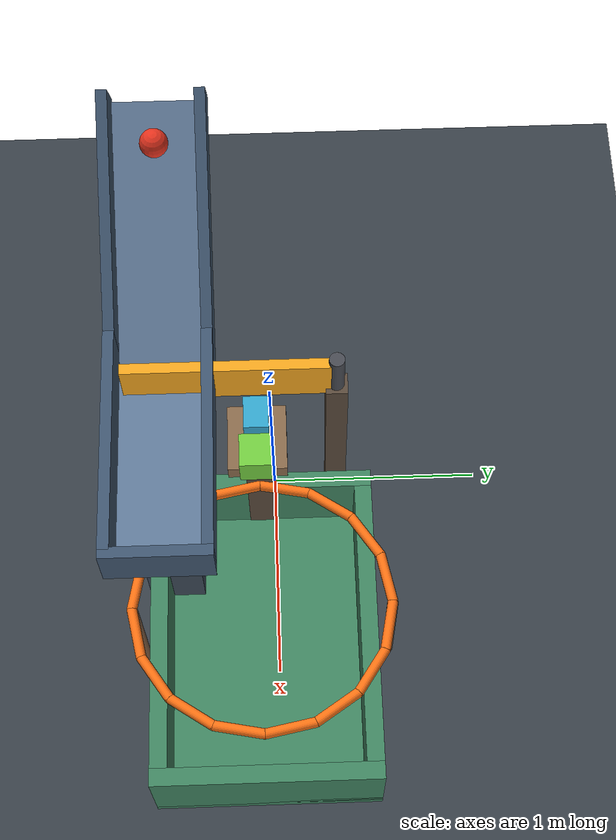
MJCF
<mujoco model="gravity_chain_reaction">
  <compiler angle="degree" inertiafromgeom="true"/>
  <option timestep="0.002" gravity="0 0 -9.81" integrator="implicitfast" cone="elliptic" iterations="80"/>
  <size njmax="2000" nconmax="400"/>

  <visual>
    <global azimuth="135" elevation="-25"/>
    <headlight ambient="0.4 0.4 0.4" diffuse="0.7 0.7 0.7" specular="0.2 0.2 0.2"/>
  </visual>

  <worldbody>
    <light name="overhead" pos="0 -2 5" dir="0 0 -1"/>
    <camera name="overview" pos="3 -5 3.2" xyaxes="0.8575 0.5145 0 -0.206 0.343 0.917"/>
    <geom name="floor" type="plane" size="6 6 0.1" rgba="0.22 0.25 0.28 1" friction="0.8 0.01 0.01"/>

    <!-- The ball begins one metre uphill from the ramp's lower edge. -->
    <body name="ramp" pos="0 0 0">
      <geom name="ramp_slope" type="box" pos="-0.66069 -0.48 1.27732" euler="0 25 0" size="0.6 0.22 0.04" rgba="0.38 0.48 0.60 1" friction="0.65 0.01 0.01" condim="6" solref="0.008 1"/>
      <geom name="ramp_slope_left_rail" type="box" pos="-0.61420 -0.695 1.37701" euler="0 25 0" size="0.62 0.025 0.10" rgba="0.25 0.34 0.44 1" friction="0.65 0.01 0.01" condim="6"/>
      <geom name="ramp_slope_right_rail" type="box" pos="-0.61420 -0.265 1.37701" euler="0 25 0" size="0.62 0.025 0.10" rgba="0.25 0.34 0.44 1" friction="0.65 0.01 0.01" condim="6"/>
      <geom name="ramp_runout" type="box" pos="0.34 -0.48 1.02" size="0.51 0.22 0.04" rgba="0.38 0.48 0.60 1" friction="0.65 0.01 0.01" condim="6" solref="0.008 1"/>
      <geom name="ramp_runout_left_rail" type="box" pos="0.34 -0.695 1.18" size="0.51 0.025 0.12" rgba="0.25 0.34 0.44 1" friction="0.65 0.01 0.01" condim="6"/>
      <geom name="ramp_runout_right_rail" type="box" pos="0.34 -0.265 1.18" size="0.51 0.025 0.12" rgba="0.25 0.34 0.44 1" friction="0.65 0.01 0.01" condim="6"/>
      <geom name="ramp_end_stop" type="box" pos="0.865 -0.48 1.18" size="0.025 0.24 0.12" rgba="0.25 0.34 0.44 1" friction="0.65 0.01 0.01" condim="6" solref="0.015 1"/>
      <geom name="ramp_upper_support" type="box" pos="-1.08 -0.48 0.72" size="0.055 0.13 0.72" rgba="0.23 0.28 0.34 1"/>
      <geom name="ramp_lower_support" type="box" pos="0.57 -0.48 0.49" size="0.055 0.13 0.49" rgba="0.23 0.28 0.34 1"/>
    </body>

    <body name="ball" pos="-0.97884 -0.48 1.54153">
      <freejoint name="ball_free"/>
      <geom name="ball_sphere" type="sphere" size="0.065" mass="1.0" rgba="0.90 0.20 0.12 1" friction="0.65 0.01 0.01" condim="6" solref="0.008 1"/>
    </body>

    <!-- A vertical-axis gate transfers motion from the lower ball lane to the striker lane. -->
    <body name="paddle" pos="0 0.30 1.14">
      <joint name="paddle_hinge" type="hinge" axis="0 0 1" limited="true" range="0 65" damping="0.02" frictionloss="0.015" armature="0.0005" solreflimit="0.01 1"/>
      <geom name="paddle_blade" type="box" pos="0 -0.475 0" size="0.025 0.475 0.12" mass="0.12" rgba="0.95 0.65 0.12 1" friction="0.25 0.005 0.002" condim="6" solref="0.008 1"/>
      <geom name="paddle_axle" type="cylinder" size="0.035 0.15" mass="0.025" rgba="0.28 0.29 0.32 1"/>
    </body>

    <body name="slider" pos="0.195 -0.06 1.14">
      <joint name="slider_slide" type="slide" axis="1 0 0" limited="true" range="0 0.28" damping="0.04" frictionloss="0.04" solreflimit="0.012 1"/>
      <geom name="slider_striker" type="box" size="0.075 0.055 0.06" mass="0.20" rgba="0.20 0.65 0.80 1" friction="0.25 0.005 0.002" condim="6" solref="0.008 1"/>
    </body>

    <body name="ledge" pos="0 0 0">
      <geom name="ledge_shelf" type="box" pos="0.2525 -0.06 1.02" size="0.1525 0.13 0.04" rgba="0.54 0.42 0.30 1" friction="0.35 0.005 0.002" condim="6" solref="0.008 1"/>
      <geom name="ledge_support" type="box" pos="0.20 -0.06 0.49" size="0.045 0.065 0.49" rgba="0.35 0.29 0.23 1"/>
      <geom name="ledge_paddle_pedestal" type="box" pos="0 0.30 0.53" size="0.05 0.05 0.53" rgba="0.35 0.29 0.23 1"/>
    </body>

    <body name="block" pos="0.38 -0.06 1.135">
      <freejoint name="block_free"/>
      <geom name="block_payload" type="box" size="0.075 0.075 0.075" mass="0.12" rgba="0.45 0.80 0.25 1" friction="0.6 0.01 0.003" condim="6" solref="0.01 1"/>
    </body>

    <!-- Sixteen capsule segments form a horizontal circular hoop. -->
    <body name="hoop" pos="0 0 0">
      <geom name="hoop_ring_01" type="capsule" fromto="1.48000 -0.06000 0.68 1.43585 0.16196 0.68" size="0.023" rgba="1 0.45 0.08 1" friction="0.4 0.005 0.002"/>
      <geom name="hoop_ring_02" type="capsule" fromto="1.43585 0.16196 0.68 1.31012 0.35012 0.68" size="0.023" rgba="1 0.45 0.08 1" friction="0.4 0.005 0.002"/>
      <geom name="hoop_ring_03" type="capsule" fromto="1.31012 0.35012 0.68 1.12196 0.47585 0.68" size="0.023" rgba="1 0.45 0.08 1" friction="0.4 0.005 0.002"/>
      <geom name="hoop_ring_04" type="capsule" fromto="1.12196 0.47585 0.68 0.90000 0.52000 0.68" size="0.023" rgba="1 0.45 0.08 1" friction="0.4 0.005 0.002"/>
      <geom name="hoop_ring_05" type="capsule" fromto="0.90000 0.52000 0.68 0.67804 0.47585 0.68" size="0.023" rgba="1 0.45 0.08 1" friction="0.4 0.005 0.002"/>
      <geom name="hoop_ring_06" type="capsule" fromto="0.67804 0.47585 0.68 0.48988 0.35012 0.68" size="0.023" rgba="1 0.45 0.08 1" friction="0.4 0.005 0.002"/>
      <geom name="hoop_ring_07" type="capsule" fromto="0.48988 0.35012 0.68 0.36415 0.16196 0.68" size="0.023" rgba="1 0.45 0.08 1" friction="0.4 0.005 0.002"/>
      <geom name="hoop_ring_08" type="capsule" fromto="0.36415 0.16196 0.68 0.32000 -0.06000 0.68" size="0.023" rgba="1 0.45 0.08 1" friction="0.4 0.005 0.002"/>
      <geom name="hoop_ring_09" type="capsule" fromto="0.32000 -0.06000 0.68 0.36415 -0.28196 0.68" size="0.023" rgba="1 0.45 0.08 1" friction="0.4 0.005 0.002"/>
      <geom name="hoop_ring_10" type="capsule" fromto="0.36415 -0.28196 0.68 0.48988 -0.47012 0.68" size="0.023" rgba="1 0.45 0.08 1" friction="0.4 0.005 0.002"/>
      <geom name="hoop_ring_11" type="capsule" fromto="0.48988 -0.47012 0.68 0.67804 -0.59585 0.68" size="0.023" rgba="1 0.45 0.08 1" friction="0.4 0.005 0.002"/>
      <geom name="hoop_ring_12" type="capsule" fromto="0.67804 -0.59585 0.68 0.90000 -0.64000 0.68" size="0.023" rgba="1 0.45 0.08 1" friction="0.4 0.005 0.002"/>
      <geom name="hoop_ring_13" type="capsule" fromto="0.90000 -0.64000 0.68 1.12196 -0.59585 0.68" size="0.023" rgba="1 0.45 0.08 1" friction="0.4 0.005 0.002"/>
      <geom name="hoop_ring_14" type="capsule" fromto="1.12196 -0.59585 0.68 1.31012 -0.47012 0.68" size="0.023" rgba="1 0.45 0.08 1" friction="0.4 0.005 0.002"/>
      <geom name="hoop_ring_15" type="capsule" fromto="1.31012 -0.47012 0.68 1.43585 -0.28196 0.68" size="0.023" rgba="1 0.45 0.08 1" friction="0.4 0.005 0.002"/>
      <geom name="hoop_ring_16" type="capsule" fromto="1.43585 -0.28196 0.68 1.48000 -0.06000 0.68" size="0.023" rgba="1 0.45 0.08 1" friction="0.4 0.005 0.002"/>
      <geom name="hoop_front_post" type="cylinder" pos="0.90 -0.64 0.33" size="0.025 0.33" rgba="0.45 0.33 0.23 1"/>
      <geom name="hoop_back_post" type="cylinder" pos="0.90 0.52 0.33" size="0.025 0.33" rgba="0.45 0.33 0.23 1"/>
    </body>

    <body name="box" pos="0 0 0">
      <geom name="box_bottom" type="box" pos="0.90 -0.06 0.04" size="0.74 0.52 0.04" rgba="0.25 0.52 0.38 1" friction="0.8 0.02 0.005" condim="6" solref="0.015 1"/>
      <geom name="box_left_wall" type="box" pos="0.20 -0.06 0.25" size="0.04 0.52 0.21" rgba="0.25 0.52 0.38 1" friction="0.8 0.02 0.005" condim="6" solref="0.015 1"/>
      <geom name="box_right_wall" type="box" pos="1.60 -0.06 0.25" size="0.04 0.52 0.21" rgba="0.25 0.52 0.38 1" friction="0.8 0.02 0.005" condim="6" solref="0.015 1"/>
      <geom name="box_front_wall" type="box" pos="0.90 -0.54 0.25" size="0.66 0.04 0.21" rgba="0.25 0.52 0.38 1" friction="0.8 0.02 0.005" condim="6" solref="0.015 1"/>
      <geom name="box_back_wall" type="box" pos="0.90 0.42 0.25" size="0.66 0.04 0.21" rgba="0.25 0.52 0.38 1" friction="0.8 0.02 0.005" condim="6" solref="0.015 1"/>
    </body>
  </worldbody>

  <contact>
    <exclude name="paddle_ramp_clearance" body1="paddle" body2="ramp"/>
    <exclude name="paddle_ledge_clearance" body1="paddle" body2="ledge"/>
  </contact>

  <keyframe>
    <key name="start" qpos="-0.97884 -0.48 1.54153 1 0 0 0 0 0 0.38 -0.06 1.135 1 0 0 0" qvel="0 0 0 0 0 0 0 0 0 0 0 0 0 0"/>
  </keyframe>
</mujoco>
